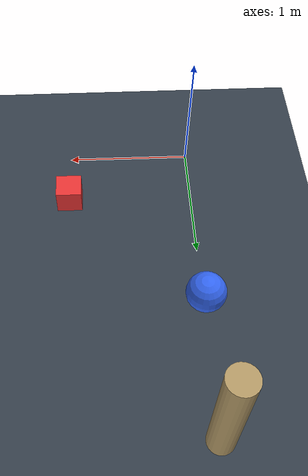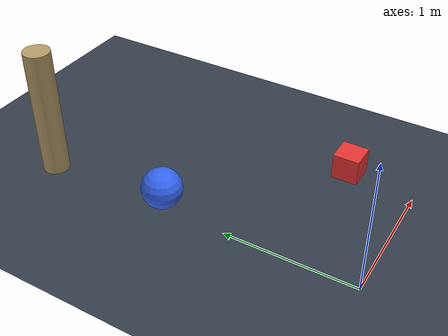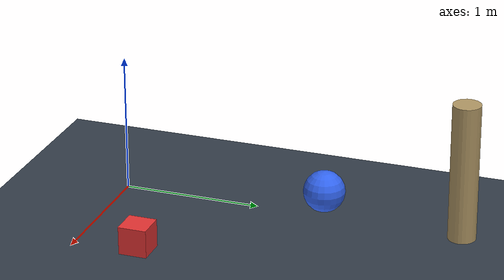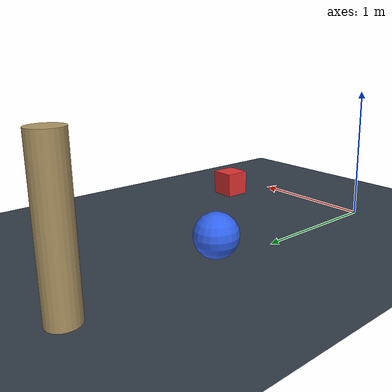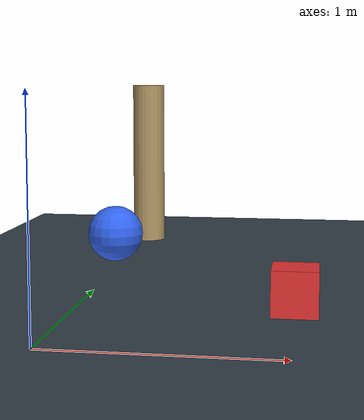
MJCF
<mujoco model="fresh_scene">
  <option timestep="0.01" gravity="0 0 -9.81"/>
  <visual>
    <global offwidth="1280" offheight="480"/>
    <quality offsamples="4"/>
    <headlight diffuse="0.7 0.7 0.7" ambient="0.3 0.3 0.3" specular="0.2 0.2 0.2"/>
  </visual>
  <asset>
    <texture name="skybox" type="skybox" builtin="gradient" rgb1="0.5 0.7 0.9" rgb2="0.1 0.15 0.25" width="256" height="256"/>
    <texture name="grid" type="2d" builtin="checker" rgb1="0.25 0.3 0.35" rgb2="0.15 0.18 0.22" width="512" height="512"/>
    <material name="grid" texture="grid" texrepeat="10 10" reflectance="0.1"/>
  </asset>

  <worldbody>
    <light pos="2 2 4" dir="-0.5 -0.5 -1" diffuse="0.8 0.8 0.8"/>
    <geom name="floor" type="plane" size="5 5 0.1" material="grid"/>

    <body name="box_red" pos="1.0 0.5 0.15">
      <freejoint/>
      <geom type="box" size="0.1 0.1 0.1" rgba="0.9 0.2 0.2 1"/>
    </body>
    <body name="sphere_blue" pos="0.0 1.5 0.2">
      <freejoint/>
      <geom type="sphere" size="0.15" rgba="0.2 0.4 0.95 1"/>
    </body>
    <body name="pillar" pos="0 2.5 0.5">
      <geom type="cylinder" size="0.1 0.5" rgba="0.7 0.6 0.4 1"/>
    </body>
  </worldbody>
</mujoco>
